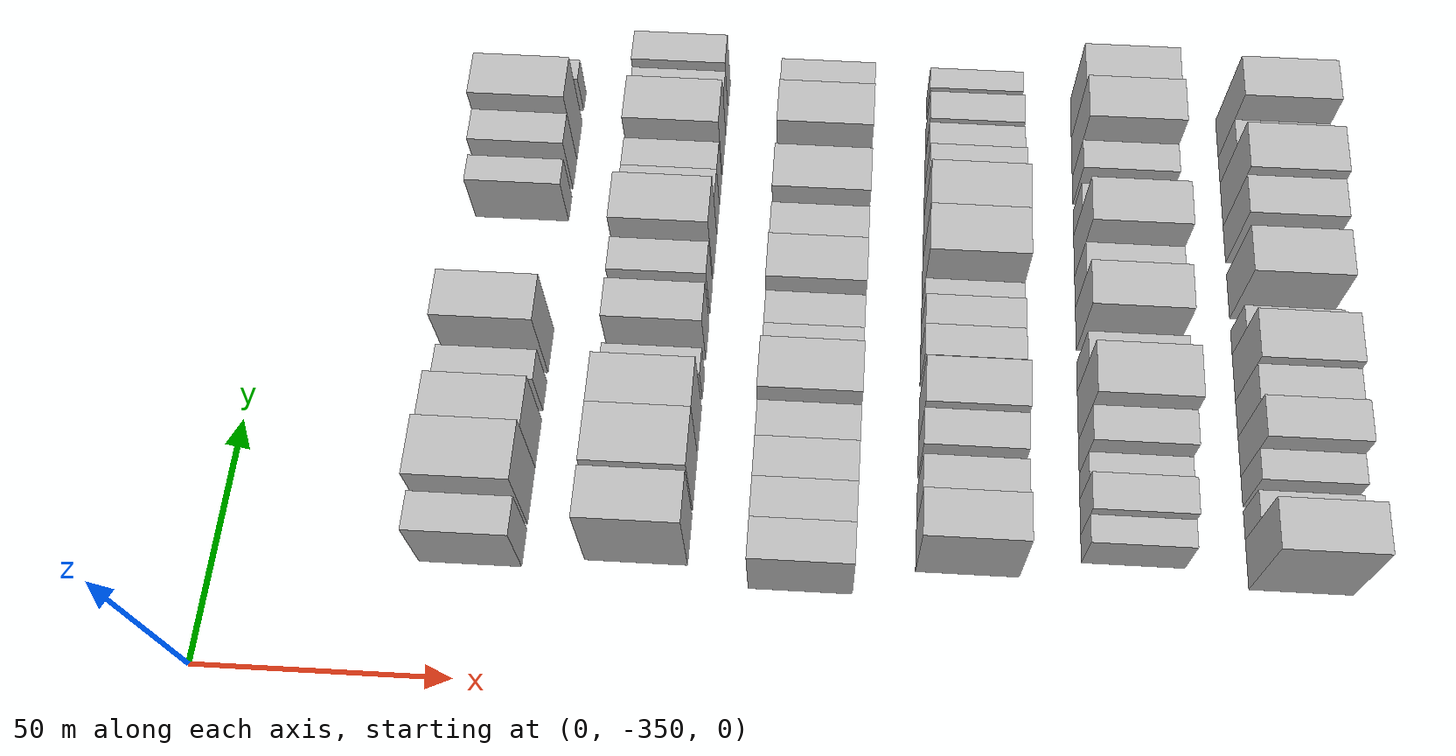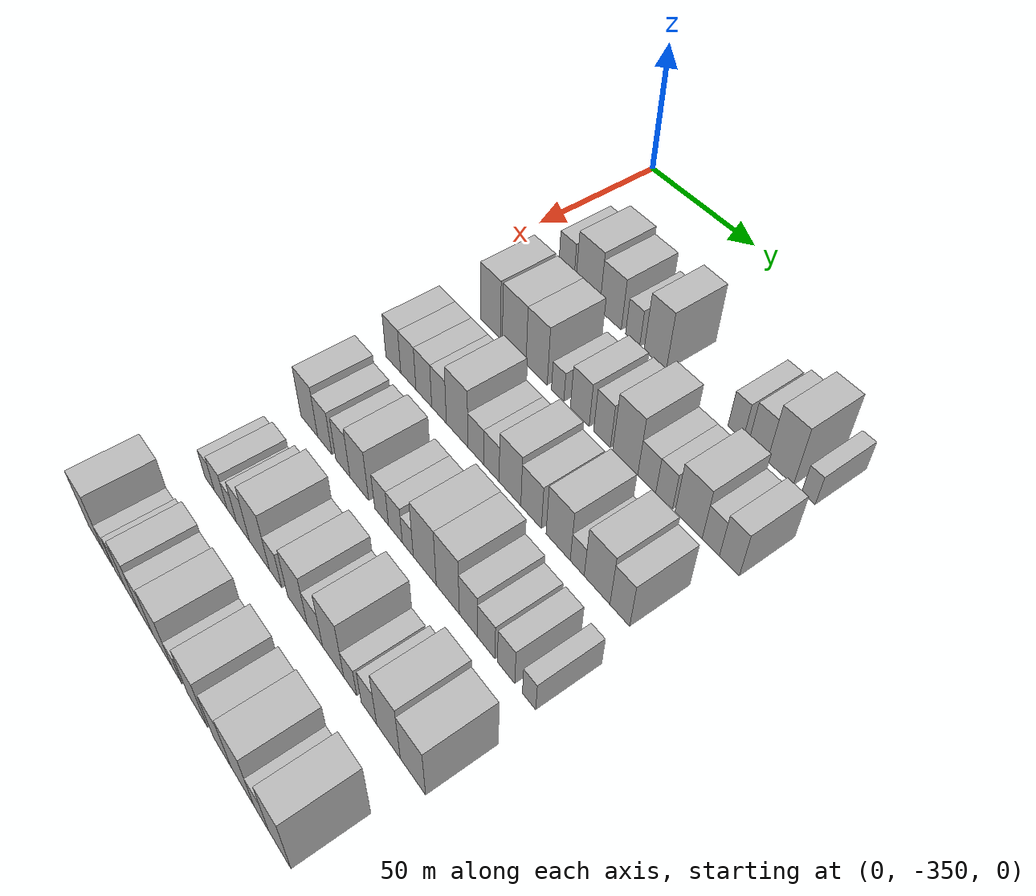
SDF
<sdf version="1.6">
 <world name="default">
  <model name="building_27">
   <static>1</static>
   <pose>50.0000 -323.6414 0 0.000000 0.000000 0.000000</pose>
   <link name="link">
    <pose>0 0 9.00 0 0 0</pose>
    <collision name="collision"><geometry><box><size>20.0000 7.6932 18.0000</size></box></geometry></collision>
    <visual name="visual">
     <cast_shadows>0</cast_shadows>
     <geometry><box><size>20.0000 7.6932 18.0000</size></box></geometry>
     <material>
      <script>
       <uri>model://HANNAS_wall/materials/scripts</uri>
       <uri>model://HANNAS_wall/materials/textures</uri>
       <name>vrc/HANNAS_wall</name>
      </script>
     </material>
    </visual>
   </link>
  </model>
  <model name="building_28">
   <static>1</static>
   <pose>50.0000 -312.8694 0 0.000000 0.000000 0.000000</pose>
   <link name="link">
    <pose>0 0 12.00 0 0 0</pose>
    <collision name="collision"><geometry><box><size>20.0000 11.8508 24.0000</size></box></geometry></collision>
    <visual name="visual">
     <cast_shadows>0</cast_shadows>
     <geometry><box><size>20.0000 11.8508 24.0000</size></box></geometry>
     <material>
      <script>
       <uri>model://HANNAS_wall/materials/scripts</uri>
       <uri>model://HANNAS_wall/materials/textures</uri>
       <name>vrc/HANNAS_wall</name>
      </script>
     </material>
    </visual>
   </link>
  </model>
  <model name="building_29">
   <static>1</static>
   <pose>50.0000 -301.7609 0 0.000000 0.000000 0.000000</pose>
   <link name="link">
    <pose>0 0 10.50 0 0 0</pose>
    <collision name="collision"><geometry><box><size>20.0000 10.3662 21.0000</size></box></geometry></collision>
    <visual name="visual">
     <cast_shadows>0</cast_shadows>
     <geometry><box><size>20.0000 10.3662 21.0000</size></box></geometry>
     <material>
      <script>
       <uri>model://HANNAS_wall/materials/scripts</uri>
       <uri>model://HANNAS_wall/materials/textures</uri>
       <name>vrc/HANNAS_wall</name>
      </script>
     </material>
    </visual>
   </link>
  </model>
  <model name="building_30">
   <static>1</static>
   <pose>50.0000 -291.3286 0 0.000000 0.000000 0.000000</pose>
   <link name="link">
    <pose>0 0 7.50 0 0 0</pose>
    <collision name="collision"><geometry><box><size>20.0000 6.4985 15.0000</size></box></geometry></collision>
    <visual name="visual">
     <cast_shadows>0</cast_shadows>
     <geometry><box><size>20.0000 6.4985 15.0000</size></box></geometry>
     <material>
      <script>
       <uri>model://HANNAS_wall/materials/scripts</uri>
       <uri>model://HANNAS_wall/materials/textures</uri>
       <name>vrc/HANNAS_wall</name>
      </script>
     </material>
    </visual>
   </link>
  </model>
  <model name="building_31">
   <static>1</static>
   <pose>50.0000 -281.1221 0 0.000000 0.000000 0.000000</pose>
   <link name="link">
    <pose>0 0 12.00 0 0 0</pose>
    <collision name="collision"><geometry><box><size>20.0000 9.9145 24.0000</size></box></geometry></collision>
    <visual name="visual">
     <cast_shadows>0</cast_shadows>
     <geometry><box><size>20.0000 9.9145 24.0000</size></box></geometry>
     <material>
      <script>
       <uri>model://HANNAS_wall/materials/scripts</uri>
       <uri>model://HANNAS_wall/materials/textures</uri>
       <name>vrc/HANNAS_wall</name>
      </script>
     </material>
    </visual>
   </link>
  </model>
  <model name="building_32">
   <static>1</static>
   <pose>50.0000 -247.1076 0 0.000000 0.000000 0.000000</pose>
   <link name="link">
    <pose>0 0 7.50 0 0 0</pose>
    <collision name="collision"><geometry><box><size>20.0000 6.0382 15.0000</size></box></geometry></collision>
    <visual name="visual">
     <cast_shadows>0</cast_shadows>
     <geometry><box><size>20.0000 6.0382 15.0000</size></box></geometry>
     <material>
      <script>
       <uri>model://HANNAS_wall/materials/scripts</uri>
       <uri>model://HANNAS_wall/materials/textures</uri>
       <name>vrc/HANNAS_wall</name>
      </script>
     </material>
    </visual>
   </link>
  </model>
  <model name="building_33">
   <static>1</static>
   <pose>50.0000 -238.3960 0 0.000000 0.000000 0.000000</pose>
   <link name="link">
    <pose>0 0 9.00 0 0 0</pose>
    <collision name="collision"><geometry><box><size>20.0000 7.3849 18.0000</size></box></geometry></collision>
    <visual name="visual">
     <cast_shadows>0</cast_shadows>
     <geometry><box><size>20.0000 7.3849 18.0000</size></box></geometry>
     <material>
      <script>
       <uri>model://HANNAS_wall/materials/scripts</uri>
       <uri>model://HANNAS_wall/materials/textures</uri>
       <name>vrc/HANNAS_wall</name>
      </script>
     </material>
    </visual>
   </link>
  </model>
  <model name="building_34">
   <static>1</static>
   <pose>50.0000 -229.7345 0 0.000000 0.000000 0.000000</pose>
   <link name="link">
    <pose>0 0 12.00 0 0 0</pose>
    <collision name="collision"><geometry><box><size>20.0000 9.9381 24.0000</size></box></geometry></collision>
    <visual name="visual">
     <cast_shadows>0</cast_shadows>
     <geometry><box><size>20.0000 9.9381 24.0000</size></box></geometry>
     <material>
      <script>
       <uri>model://HANNAS_wall/materials/scripts</uri>
       <uri>model://HANNAS_wall/materials/textures</uri>
       <name>vrc/HANNAS_wall</name>
      </script>
     </material>
    </visual>
   </link>
  </model>
  <model name="building_35">
   <static>1</static>
   <pose>50.0000 -219.2893 0 0.000000 0.000000 0.000000</pose>
   <link name="link">
    <pose>0 0 6.00 0 0 0</pose>
    <collision name="collision"><geometry><box><size>20.0000 4.9522 12.0000</size></box></geometry></collision>
    <visual name="visual">
     <cast_shadows>0</cast_shadows>
     <geometry><box><size>20.0000 4.9522 12.0000</size></box></geometry>
     <material>
      <script>
       <uri>model://HANNAS_wall/materials/scripts</uri>
       <uri>model://HANNAS_wall/materials/textures</uri>
       <name>vrc/HANNAS_wall</name>
      </script>
     </material>
    </visual>
   </link>
  </model>
  <model name="building_144">
   <static>1</static>
   <pose>82.0000 -320.3212 0 0.000000 0.000000 0.000000</pose>
   <link name="link">
    <pose>0 0 12.00 0 0 0</pose>
    <collision name="collision"><geometry><box><size>20.0000 10.1823 24.0000</size></box></geometry></collision>
    <visual name="visual">
     <cast_shadows>0</cast_shadows>
     <geometry><box><size>20.0000 10.1823 24.0000</size></box></geometry>
     <material>
      <script>
       <uri>model://HANNAS_wall/materials/scripts</uri>
       <uri>model://HANNAS_wall/materials/textures</uri>
       <name>vrc/HANNAS_wall</name>
      </script>
     </material>
    </visual>
   </link>
  </model>
  <model name="building_145">
   <static>1</static>
   <pose>82.0000 -308.3288 0 0.000000 0.000000 0.000000</pose>
   <link name="link">
    <pose>0 0 12.00 0 0 0</pose>
    <collision name="collision"><geometry><box><size>20.0000 11.8025 24.0000</size></box></geometry></collision>
    <visual name="visual">
     <cast_shadows>0</cast_shadows>
     <geometry><box><size>20.0000 11.8025 24.0000</size></box></geometry>
     <material>
      <script>
       <uri>model://HANNAS_wall/materials/scripts</uri>
       <uri>model://HANNAS_wall/materials/textures</uri>
       <name>vrc/HANNAS_wall</name>
      </script>
     </material>
    </visual>
   </link>
  </model>
  <model name="building_146">
   <static>1</static>
   <pose>82.0000 -297.3168 0 0.000000 0.000000 0.000000</pose>
   <link name="link">
    <pose>0 0 12.00 0 0 0</pose>
    <collision name="collision"><geometry><box><size>20.0000 10.2214 24.0000</size></box></geometry></collision>
    <visual name="visual">
     <cast_shadows>0</cast_shadows>
     <geometry><box><size>20.0000 10.2214 24.0000</size></box></geometry>
     <material>
      <script>
       <uri>model://HANNAS_wall/materials/scripts</uri>
       <uri>model://HANNAS_wall/materials/textures</uri>
       <name>vrc/HANNAS_wall</name>
      </script>
     </material>
    </visual>
   </link>
  </model>
  <model name="building_147">
   <static>1</static>
   <pose>82.0000 -287.3278 0 0.000000 0.000000 0.000000</pose>
   <link name="link">
    <pose>0 0 6.00 0 0 0</pose>
    <collision name="collision"><geometry><box><size>20.0000 5.7566 12.0000</size></box></geometry></collision>
    <visual name="visual">
     <cast_shadows>0</cast_shadows>
     <geometry><box><size>20.0000 5.7566 12.0000</size></box></geometry>
     <material>
      <script>
       <uri>model://HANNAS_wall/materials/scripts</uri>
       <uri>model://HANNAS_wall/materials/textures</uri>
       <name>vrc/HANNAS_wall</name>
      </script>
     </material>
    </visual>
   </link>
  </model>
  <model name="building_148">
   <static>1</static>
   <pose>82.0000 -277.2090 0 0.000000 0.000000 0.000000</pose>
   <link name="link">
    <pose>0 0 9.00 0 0 0</pose>
    <collision name="collision"><geometry><box><size>20.0000 8.4811 18.0000</size></box></geometry></collision>
    <visual name="visual">
     <cast_shadows>0</cast_shadows>
     <geometry><box><size>20.0000 8.4811 18.0000</size></box></geometry>
     <material>
      <script>
       <uri>model://HANNAS_wall/materials/scripts</uri>
       <uri>model://HANNAS_wall/materials/textures</uri>
       <name>vrc/HANNAS_wall</name>
      </script>
     </material>
    </visual>
   </link>
  </model>
  <model name="building_149">
   <static>1</static>
   <pose>82.0000 -267.3044 0 0.000000 0.000000 0.000000</pose>
   <link name="link">
    <pose>0 0 9.00 0 0 0</pose>
    <collision name="collision"><geometry><box><size>20.0000 7.3281 18.0000</size></box></geometry></collision>
    <visual name="visual">
     <cast_shadows>0</cast_shadows>
     <geometry><box><size>20.0000 7.3281 18.0000</size></box></geometry>
     <material>
      <script>
       <uri>model://HANNAS_wall/materials/scripts</uri>
       <uri>model://HANNAS_wall/materials/textures</uri>
       <name>vrc/HANNAS_wall</name>
      </script>
     </material>
    </visual>
   </link>
  </model>
  <model name="building_150">
   <static>1</static>
   <pose>82.0000 -257.3598 0 0.000000 0.000000 0.000000</pose>
   <link name="link">
    <pose>0 0 12.00 0 0 0</pose>
    <collision name="collision"><geometry><box><size>20.0000 10.5610 24.0000</size></box></geometry></collision>
    <visual name="visual">
     <cast_shadows>0</cast_shadows>
     <geometry><box><size>20.0000 10.5610 24.0000</size></box></geometry>
     <material>
      <script>
       <uri>model://HANNAS_wall/materials/scripts</uri>
       <uri>model://HANNAS_wall/materials/textures</uri>
       <name>vrc/HANNAS_wall</name>
      </script>
     </material>
    </visual>
   </link>
  </model>
  <model name="building_151">
   <static>1</static>
   <pose>82.0000 -248.3810 0 0.000000 0.000000 0.000000</pose>
   <link name="link">
    <pose>0 0 7.50 0 0 0</pose>
    <collision name="collision"><geometry><box><size>20.0000 7.3967 15.0000</size></box></geometry></collision>
    <visual name="visual">
     <cast_shadows>0</cast_shadows>
     <geometry><box><size>20.0000 7.3967 15.0000</size></box></geometry>
     <material>
      <script>
       <uri>model://HANNAS_wall/materials/scripts</uri>
       <uri>model://HANNAS_wall/materials/textures</uri>
       <name>vrc/HANNAS_wall</name>
      </script>
     </material>
    </visual>
   </link>
  </model>
  <model name="building_152">
   <static>1</static>
   <pose>82.0000 -241.3477 0 0.000000 0.000000 0.000000</pose>
   <link name="link">
    <pose>0 0 7.50 0 0 0</pose>
    <collision name="collision"><geometry><box><size>20.0000 6.6700 15.0000</size></box></geometry></collision>
    <visual name="visual">
     <cast_shadows>0</cast_shadows>
     <geometry><box><size>20.0000 6.6700 15.0000</size></box></geometry>
     <material>
      <script>
       <uri>model://HANNAS_wall/materials/scripts</uri>
       <uri>model://HANNAS_wall/materials/textures</uri>
       <name>vrc/HANNAS_wall</name>
      </script>
     </material>
    </visual>
   </link>
  </model>
  <model name="building_153">
   <static>1</static>
   <pose>82.0000 -231.7637 0 0.000000 0.000000 0.000000</pose>
   <link name="link">
    <pose>0 0 10.50 0 0 0</pose>
    <collision name="collision"><geometry><box><size>20.0000 10.4980 21.0000</size></box></geometry></collision>
    <visual name="visual">
     <cast_shadows>0</cast_shadows>
     <geometry><box><size>20.0000 10.4980 21.0000</size></box></geometry>
     <material>
      <script>
       <uri>model://HANNAS_wall/materials/scripts</uri>
       <uri>model://HANNAS_wall/materials/textures</uri>
       <name>vrc/HANNAS_wall</name>
      </script>
     </material>
    </visual>
   </link>
  </model>
  <model name="building_154">
   <static>1</static>
   <pose>82.0000 -223.2858 0 0.000000 0.000000 0.000000</pose>
   <link name="link">
    <pose>0 0 7.50 0 0 0</pose>
    <collision name="collision"><geometry><box><size>20.0000 6.4578 15.0000</size></box></geometry></collision>
    <visual name="visual">
     <cast_shadows>0</cast_shadows>
     <geometry><box><size>20.0000 6.4578 15.0000</size></box></geometry>
     <material>
      <script>
       <uri>model://HANNAS_wall/materials/scripts</uri>
       <uri>model://HANNAS_wall/materials/textures</uri>
       <name>vrc/HANNAS_wall</name>
      </script>
     </material>
    </visual>
   </link>
  </model>
  <model name="building_155">
   <static>1</static>
   <pose>82.0000 -216.4100 0 0.000000 0.000000 0.000000</pose>
   <link name="link">
    <pose>0 0 9.00 0 0 0</pose>
    <collision name="collision"><geometry><box><size>20.0000 7.2937 18.0000</size></box></geometry></collision>
    <visual name="visual">
     <cast_shadows>0</cast_shadows>
     <geometry><box><size>20.0000 7.2937 18.0000</size></box></geometry>
     <material>
      <script>
       <uri>model://HANNAS_wall/materials/scripts</uri>
       <uri>model://HANNAS_wall/materials/textures</uri>
       <name>vrc/HANNAS_wall</name>
      </script>
     </material>
    </visual>
   </link>
  </model>
  <model name="building_265">
   <static>1</static>
   <pose>114.0000 -325.2834 0 0.000000 0.000000 0.000000</pose>
   <link name="link">
    <pose>0 0 9.00 0 0 0</pose>
    <collision name="collision"><geometry><box><size>20.0000 8.1503 18.0000</size></box></geometry></collision>
    <visual name="visual">
     <cast_shadows>0</cast_shadows>
     <geometry><box><size>20.0000 8.1503 18.0000</size></box></geometry>
     <material>
      <script>
       <uri>model://HANNAS_wall/materials/scripts</uri>
       <uri>model://HANNAS_wall/materials/textures</uri>
       <name>vrc/HANNAS_wall</name>
      </script>
     </material>
    </visual>
   </link>
  </model>
  <model name="building_266">
   <static>1</static>
   <pose>114.0000 -317.1820 0 0.000000 0.000000 0.000000</pose>
   <link name="link">
    <pose>0 0 9.00 0 0 0</pose>
    <collision name="collision"><geometry><box><size>20.0000 8.0524 18.0000</size></box></geometry></collision>
    <visual name="visual">
     <cast_shadows>0</cast_shadows>
     <geometry><box><size>20.0000 8.0524 18.0000</size></box></geometry>
     <material>
      <script>
       <uri>model://HANNAS_wall/materials/scripts</uri>
       <uri>model://HANNAS_wall/materials/textures</uri>
       <name>vrc/HANNAS_wall</name>
      </script>
     </material>
    </visual>
   </link>
  </model>
  <model name="building_267">
   <static>1</static>
   <pose>114.0000 -309.0628 0 0.000000 0.000000 0.000000</pose>
   <link name="link">
    <pose>0 0 9.00 0 0 0</pose>
    <collision name="collision"><geometry><box><size>20.0000 8.1862 18.0000</size></box></geometry></collision>
    <visual name="visual">
     <cast_shadows>0</cast_shadows>
     <geometry><box><size>20.0000 8.1862 18.0000</size></box></geometry>
     <material>
      <script>
       <uri>model://HANNAS_wall/materials/scripts</uri>
       <uri>model://HANNAS_wall/materials/textures</uri>
       <name>vrc/HANNAS_wall</name>
      </script>
     </material>
    </visual>
   </link>
  </model>
  <model name="building_268">
   <static>1</static>
   <pose>114.0000 -301.2890 0 0.000000 0.000000 0.000000</pose>
   <link name="link">
    <pose>0 0 9.00 0 0 0</pose>
    <collision name="collision"><geometry><box><size>20.0000 7.3613 18.0000</size></box></geometry></collision>
    <visual name="visual">
     <cast_shadows>0</cast_shadows>
     <geometry><box><size>20.0000 7.3613 18.0000</size></box></geometry>
     <material>
      <script>
       <uri>model://HANNAS_wall/materials/scripts</uri>
       <uri>model://HANNAS_wall/materials/textures</uri>
       <name>vrc/HANNAS_wall</name>
      </script>
     </material>
    </visual>
   </link>
  </model>
  <model name="building_269">
   <static>1</static>
   <pose>114.0000 -292.2931 0 0.000000 0.000000 0.000000</pose>
   <link name="link">
    <pose>0 0 12.00 0 0 0</pose>
    <collision name="collision"><geometry><box><size>20.0000 10.6304 24.0000</size></box></geometry></collision>
    <visual name="visual">
     <cast_shadows>0</cast_shadows>
     <geometry><box><size>20.0000 10.6304 24.0000</size></box></geometry>
     <material>
      <script>
       <uri>model://HANNAS_wall/materials/scripts</uri>
       <uri>model://HANNAS_wall/materials/textures</uri>
       <name>vrc/HANNAS_wall</name>
      </script>
     </material>
    </visual>
   </link>
  </model>
  <model name="building_270">
   <static>1</static>
   <pose>114.0000 -283.2982 0 0.000000 0.000000 0.000000</pose>
   <link name="link">
    <pose>0 0 7.50 0 0 0</pose>
    <collision name="collision"><geometry><box><size>20.0000 7.3595 15.0000</size></box></geometry></collision>
    <visual name="visual">
     <cast_shadows>0</cast_shadows>
     <geometry><box><size>20.0000 7.3595 15.0000</size></box></geometry>
     <material>
      <script>
       <uri>model://HANNAS_wall/materials/scripts</uri>
       <uri>model://HANNAS_wall/materials/textures</uri>
       <name>vrc/HANNAS_wall</name>
      </script>
     </material>
    </visual>
   </link>
  </model>
  <model name="building_271">
   <static>1</static>
   <pose>114.0000 -276.0017 0 0.000000 0.000000 0.000000</pose>
   <link name="link">
    <pose>0 0 7.50 0 0 0</pose>
    <collision name="collision"><geometry><box><size>20.0000 7.2335 15.0000</size></box></geometry></collision>
    <visual name="visual">
     <cast_shadows>0</cast_shadows>
     <geometry><box><size>20.0000 7.2335 15.0000</size></box></geometry>
     <material>
      <script>
       <uri>model://HANNAS_wall/materials/scripts</uri>
       <uri>model://HANNAS_wall/materials/textures</uri>
       <name>vrc/HANNAS_wall</name>
      </script>
     </material>
    </visual>
   </link>
  </model>
  <model name="building_272">
   <static>1</static>
   <pose>114.0000 -267.5055 0 0.000000 0.000000 0.000000</pose>
   <link name="link">
    <pose>0 0 10.50 0 0 0</pose>
    <collision name="collision"><geometry><box><size>20.0000 9.7589 21.0000</size></box></geometry></collision>
    <visual name="visual">
     <cast_shadows>0</cast_shadows>
     <geometry><box><size>20.0000 9.7589 21.0000</size></box></geometry>
     <material>
      <script>
       <uri>model://HANNAS_wall/materials/scripts</uri>
       <uri>model://HANNAS_wall/materials/textures</uri>
       <name>vrc/HANNAS_wall</name>
      </script>
     </material>
    </visual>
   </link>
  </model>
  <model name="building_273">
   <static>1</static>
   <pose>114.0000 -258.1486 0 0.000000 0.000000 0.000000</pose>
   <link name="link">
    <pose>0 0 9.00 0 0 0</pose>
    <collision name="collision"><geometry><box><size>20.0000 8.9550 18.0000</size></box></geometry></collision>
    <visual name="visual">
     <cast_shadows>0</cast_shadows>
     <geometry><box><size>20.0000 8.9550 18.0000</size></box></geometry>
     <material>
      <script>
       <uri>model://HANNAS_wall/materials/scripts</uri>
       <uri>model://HANNAS_wall/materials/textures</uri>
       <name>vrc/HANNAS_wall</name>
      </script>
     </material>
    </visual>
   </link>
  </model>
  <model name="building_274">
   <static>1</static>
   <pose>114.0000 -246.6217 0 0.000000 0.000000 0.000000</pose>
   <link name="link">
    <pose>0 0 10.50 0 0 0</pose>
    <collision name="collision"><geometry><box><size>20.0000 10.0988 21.0000</size></box></geometry></collision>
    <visual name="visual">
     <cast_shadows>0</cast_shadows>
     <geometry><box><size>20.0000 10.0988 21.0000</size></box></geometry>
     <material>
      <script>
       <uri>model://HANNAS_wall/materials/scripts</uri>
       <uri>model://HANNAS_wall/materials/textures</uri>
       <name>vrc/HANNAS_wall</name>
      </script>
     </material>
    </visual>
   </link>
  </model>
  <model name="building_275">
   <static>1</static>
   <pose>114.0000 -238.7456 0 0.000000 0.000000 0.000000</pose>
   <link name="link">
    <pose>0 0 6.00 0 0 0</pose>
    <collision name="collision"><geometry><box><size>20.0000 5.6533 12.0000</size></box></geometry></collision>
    <visual name="visual">
     <cast_shadows>0</cast_shadows>
     <geometry><box><size>20.0000 5.6533 12.0000</size></box></geometry>
     <material>
      <script>
       <uri>model://HANNAS_wall/materials/scripts</uri>
       <uri>model://HANNAS_wall/materials/textures</uri>
       <name>vrc/HANNAS_wall</name>
      </script>
     </material>
    </visual>
   </link>
  </model>
  <model name="building_276">
   <static>1</static>
   <pose>114.0000 -230.8264 0 0.000000 0.000000 0.000000</pose>
   <link name="link">
    <pose>0 0 10.50 0 0 0</pose>
    <collision name="collision"><geometry><box><size>20.0000 10.1851 21.0000</size></box></geometry></collision>
    <visual name="visual">
     <cast_shadows>0</cast_shadows>
     <geometry><box><size>20.0000 10.1851 21.0000</size></box></geometry>
     <material>
      <script>
       <uri>model://HANNAS_wall/materials/scripts</uri>
       <uri>model://HANNAS_wall/materials/textures</uri>
       <name>vrc/HANNAS_wall</name>
      </script>
     </material>
    </visual>
   </link>
  </model>
  <model name="building_277">
   <static>1</static>
   <pose>114.0000 -221.9680 0 0.000000 0.000000 0.000000</pose>
   <link name="link">
    <pose>0 0 9.00 0 0 0</pose>
    <collision name="collision"><geometry><box><size>20.0000 7.5317 18.0000</size></box></geometry></collision>
    <visual name="visual">
     <cast_shadows>0</cast_shadows>
     <geometry><box><size>20.0000 7.5317 18.0000</size></box></geometry>
     <material>
      <script>
       <uri>model://HANNAS_wall/materials/scripts</uri>
       <uri>model://HANNAS_wall/materials/textures</uri>
       <name>vrc/HANNAS_wall</name>
      </script>
     </material>
    </visual>
   </link>
  </model>
  <model name="building_386">
   <static>1</static>
   <pose>146.0000 -319.5078 0 0.000000 0.000000 0.000000</pose>
   <link name="link">
    <pose>0 0 10.50 0 0 0</pose>
    <collision name="collision"><geometry><box><size>20.0000 9.3915 21.0000</size></box></geometry></collision>
    <visual name="visual">
     <cast_shadows>0</cast_shadows>
     <geometry><box><size>20.0000 9.3915 21.0000</size></box></geometry>
     <material>
      <script>
       <uri>model://HANNAS_wall/materials/scripts</uri>
       <uri>model://HANNAS_wall/materials/textures</uri>
       <name>vrc/HANNAS_wall</name>
      </script>
     </material>
    </visual>
   </link>
  </model>
  <model name="building_387">
   <static>1</static>
   <pose>146.0000 -310.8826 0 0.000000 0.000000 0.000000</pose>
   <link name="link">
    <pose>0 0 9.00 0 0 0</pose>
    <collision name="collision"><geometry><box><size>20.0000 7.8588 18.0000</size></box></geometry></collision>
    <visual name="visual">
     <cast_shadows>0</cast_shadows>
     <geometry><box><size>20.0000 7.8588 18.0000</size></box></geometry>
     <material>
      <script>
       <uri>model://HANNAS_wall/materials/scripts</uri>
       <uri>model://HANNAS_wall/materials/textures</uri>
       <name>vrc/HANNAS_wall</name>
      </script>
     </material>
    </visual>
   </link>
  </model>
  <model name="building_388">
   <static>1</static>
   <pose>146.0000 -301.2039 0 0.000000 0.000000 0.000000</pose>
   <link name="link">
    <pose>0 0 9.00 0 0 0</pose>
    <collision name="collision"><geometry><box><size>20.0000 7.4986 18.0000</size></box></geometry></collision>
    <visual name="visual">
     <cast_shadows>0</cast_shadows>
     <geometry><box><size>20.0000 7.4986 18.0000</size></box></geometry>
     <material>
      <script>
       <uri>model://HANNAS_wall/materials/scripts</uri>
       <uri>model://HANNAS_wall/materials/textures</uri>
       <name>vrc/HANNAS_wall</name>
      </script>
     </material>
    </visual>
   </link>
  </model>
  <model name="building_389">
   <static>1</static>
   <pose>146.0000 -292.6396 0 0.000000 0.000000 0.000000</pose>
   <link name="link">
    <pose>0 0 10.50 0 0 0</pose>
    <collision name="collision"><geometry><box><size>20.0000 9.6301 21.0000</size></box></geometry></collision>
    <visual name="visual">
     <cast_shadows>0</cast_shadows>
     <geometry><box><size>20.0000 9.6301 21.0000</size></box></geometry>
     <material>
      <script>
       <uri>model://HANNAS_wall/materials/scripts</uri>
       <uri>model://HANNAS_wall/materials/textures</uri>
       <name>vrc/HANNAS_wall</name>
      </script>
     </material>
    </visual>
   </link>
  </model>
  <model name="building_390">
   <static>1</static>
   <pose>146.0000 -281.4027 0 0.000000 0.000000 0.000000</pose>
   <link name="link">
    <pose>0 0 7.50 0 0 0</pose>
    <collision name="collision"><geometry><box><size>20.0000 6.8437 15.0000</size></box></geometry></collision>
    <visual name="visual">
     <cast_shadows>0</cast_shadows>
     <geometry><box><size>20.0000 6.8437 15.0000</size></box></geometry>
     <material>
      <script>
       <uri>model://HANNAS_wall/materials/scripts</uri>
       <uri>model://HANNAS_wall/materials/textures</uri>
       <name>vrc/HANNAS_wall</name>
      </script>
     </material>
    </visual>
   </link>
  </model>
  <model name="building_391">
   <static>1</static>
   <pose>146.0000 -274.6642 0 0.000000 0.000000 0.000000</pose>
   <link name="link">
    <pose>0 0 7.50 0 0 0</pose>
    <collision name="collision"><geometry><box><size>20.0000 6.6334 15.0000</size></box></geometry></collision>
    <visual name="visual">
     <cast_shadows>0</cast_shadows>
     <geometry><box><size>20.0000 6.6334 15.0000</size></box></geometry>
     <material>
      <script>
       <uri>model://HANNAS_wall/materials/scripts</uri>
       <uri>model://HANNAS_wall/materials/textures</uri>
       <name>vrc/HANNAS_wall</name>
      </script>
     </material>
    </visual>
   </link>
  </model>
  <model name="building_392">
   <static>1</static>
   <pose>146.0000 -268.7744 0 0.000000 0.000000 0.000000</pose>
   <link name="link">
    <pose>0 0 6.00 0 0 0</pose>
    <collision name="collision"><geometry><box><size>20.0000 5.1462 12.0000</size></box></geometry></collision>
    <visual name="visual">
     <cast_shadows>0</cast_shadows>
     <geometry><box><size>20.0000 5.1462 12.0000</size></box></geometry>
     <material>
      <script>
       <uri>model://HANNAS_wall/materials/scripts</uri>
       <uri>model://HANNAS_wall/materials/textures</uri>
       <name>vrc/HANNAS_wall</name>
      </script>
     </material>
    </visual>
   </link>
  </model>
  <model name="building_393">
   <static>1</static>
   <pose>146.0000 -260.9566 0 0.000000 0.000000 0.000000</pose>
   <link name="link">
    <pose>0 0 12.00 0 0 0</pose>
    <collision name="collision"><geometry><box><size>20.0000 10.4893 24.0000</size></box></geometry></collision>
    <visual name="visual">
     <cast_shadows>0</cast_shadows>
     <geometry><box><size>20.0000 10.4893 24.0000</size></box></geometry>
     <material>
      <script>
       <uri>model://HANNAS_wall/materials/scripts</uri>
       <uri>model://HANNAS_wall/materials/textures</uri>
       <name>vrc/HANNAS_wall</name>
      </script>
     </material>
    </visual>
   </link>
  </model>
  <model name="building_394">
   <static>1</static>
   <pose>146.0000 -250.6134 0 0.000000 0.000000 0.000000</pose>
   <link name="link">
    <pose>0 0 12.00 0 0 0</pose>
    <collision name="collision"><geometry><box><size>20.0000 10.1972 24.0000</size></box></geometry></collision>
    <visual name="visual">
     <cast_shadows>0</cast_shadows>
     <geometry><box><size>20.0000 10.1972 24.0000</size></box></geometry>
     <material>
      <script>
       <uri>model://HANNAS_wall/materials/scripts</uri>
       <uri>model://HANNAS_wall/materials/textures</uri>
       <name>vrc/HANNAS_wall</name>
      </script>
     </material>
    </visual>
   </link>
  </model>
  <model name="building_395">
   <static>1</static>
   <pose>146.0000 -241.6438 0 0.000000 0.000000 0.000000</pose>
   <link name="link">
    <pose>0 0 9.00 0 0 0</pose>
    <collision name="collision"><geometry><box><size>20.0000 7.7420 18.0000</size></box></geometry></collision>
    <visual name="visual">
     <cast_shadows>0</cast_shadows>
     <geometry><box><size>20.0000 7.7420 18.0000</size></box></geometry>
     <material>
      <script>
       <uri>model://HANNAS_wall/materials/scripts</uri>
       <uri>model://HANNAS_wall/materials/textures</uri>
       <name>vrc/HANNAS_wall</name>
      </script>
     </material>
    </visual>
   </link>
  </model>
  <model name="building_396">
   <static>1</static>
   <pose>146.0000 -234.1545 0 0.000000 0.000000 0.000000</pose>
   <link name="link">
    <pose>0 0 7.50 0 0 0</pose>
    <collision name="collision"><geometry><box><size>20.0000 7.2367 15.0000</size></box></geometry></collision>
    <visual name="visual">
     <cast_shadows>0</cast_shadows>
     <geometry><box><size>20.0000 7.2367 15.0000</size></box></geometry>
     <material>
      <script>
       <uri>model://HANNAS_wall/materials/scripts</uri>
       <uri>model://HANNAS_wall/materials/textures</uri>
       <name>vrc/HANNAS_wall</name>
      </script>
     </material>
    </visual>
   </link>
  </model>
  <model name="building_397">
   <static>1</static>
   <pose>146.0000 -226.0897 0 0.000000 0.000000 0.000000</pose>
   <link name="link">
    <pose>0 0 7.50 0 0 0</pose>
    <collision name="collision"><geometry><box><size>20.0000 6.8929 15.0000</size></box></geometry></collision>
    <visual name="visual">
     <cast_shadows>0</cast_shadows>
     <geometry><box><size>20.0000 6.8929 15.0000</size></box></geometry>
     <material>
      <script>
       <uri>model://HANNAS_wall/materials/scripts</uri>
       <uri>model://HANNAS_wall/materials/textures</uri>
       <name>vrc/HANNAS_wall</name>
      </script>
     </material>
    </visual>
   </link>
  </model>
  <model name="building_398">
   <static>1</static>
   <pose>146.0000 -217.0744 0 0.000000 0.000000 0.000000</pose>
   <link name="link">
    <pose>0 0 6.00 0 0 0</pose>
    <collision name="collision"><geometry><box><size>20.0000 5.1376 12.0000</size></box></geometry></collision>
    <visual name="visual">
     <cast_shadows>0</cast_shadows>
     <geometry><box><size>20.0000 5.1376 12.0000</size></box></geometry>
     <material>
      <script>
       <uri>model://HANNAS_wall/materials/scripts</uri>
       <uri>model://HANNAS_wall/materials/textures</uri>
       <name>vrc/HANNAS_wall</name>
      </script>
     </material>
    </visual>
   </link>
  </model>
  <model name="building_505">
   <static>1</static>
   <pose>178.0000 -317.8213 0 0.000000 0.000000 0.000000</pose>
   <link name="link">
    <pose>0 0 6.00 0 0 0</pose>
    <collision name="collision"><geometry><box><size>20.0000 5.6110 12.0000</size></box></geometry></collision>
    <visual name="visual">
     <cast_shadows>0</cast_shadows>
     <geometry><box><size>20.0000 5.6110 12.0000</size></box></geometry>
     <material>
      <script>
       <uri>model://HANNAS_wall/materials/scripts</uri>
       <uri>model://HANNAS_wall/materials/textures</uri>
       <name>vrc/HANNAS_wall</name>
      </script>
     </material>
    </visual>
   </link>
  </model>
  <model name="building_506">
   <static>1</static>
   <pose>178.0000 -311.3039 0 0.000000 0.000000 0.000000</pose>
   <link name="link">
    <pose>0 0 7.50 0 0 0</pose>
    <collision name="collision"><geometry><box><size>20.0000 7.4238 15.0000</size></box></geometry></collision>
    <visual name="visual">
     <cast_shadows>0</cast_shadows>
     <geometry><box><size>20.0000 7.4238 15.0000</size></box></geometry>
     <material>
      <script>
       <uri>model://HANNAS_wall/materials/scripts</uri>
       <uri>model://HANNAS_wall/materials/textures</uri>
       <name>vrc/HANNAS_wall</name>
      </script>
     </material>
    </visual>
   </link>
  </model>
  <model name="building_507">
   <static>1</static>
   <pose>178.0000 -304.9436 0 0.000000 0.000000 0.000000</pose>
   <link name="link">
    <pose>0 0 6.00 0 0 0</pose>
    <collision name="collision"><geometry><box><size>20.0000 5.2969 12.0000</size></box></geometry></collision>
    <visual name="visual">
     <cast_shadows>0</cast_shadows>
     <geometry><box><size>20.0000 5.2969 12.0000</size></box></geometry>
     <material>
      <script>
       <uri>model://HANNAS_wall/materials/scripts</uri>
       <uri>model://HANNAS_wall/materials/textures</uri>
       <name>vrc/HANNAS_wall</name>
      </script>
     </material>
    </visual>
   </link>
  </model>
  <model name="building_508">
   <static>1</static>
   <pose>178.0000 -298.6884 0 0.000000 0.000000 0.000000</pose>
   <link name="link">
    <pose>0 0 9.00 0 0 0</pose>
    <collision name="collision"><geometry><box><size>20.0000 7.2136 18.0000</size></box></geometry></collision>
    <visual name="visual">
     <cast_shadows>0</cast_shadows>
     <geometry><box><size>20.0000 7.2136 18.0000</size></box></geometry>
     <material>
      <script>
       <uri>model://HANNAS_wall/materials/scripts</uri>
       <uri>model://HANNAS_wall/materials/textures</uri>
       <name>vrc/HANNAS_wall</name>
      </script>
     </material>
    </visual>
   </link>
  </model>
  <model name="building_509">
   <static>1</static>
   <pose>178.0000 -289.7011 0 0.000000 0.000000 0.000000</pose>
   <link name="link">
    <pose>0 0 12.00 0 0 0</pose>
    <collision name="collision"><geometry><box><size>20.0000 10.7609 24.0000</size></box></geometry></collision>
    <visual name="visual">
     <cast_shadows>0</cast_shadows>
     <geometry><box><size>20.0000 10.7609 24.0000</size></box></geometry>
     <material>
      <script>
       <uri>model://HANNAS_wall/materials/scripts</uri>
       <uri>model://HANNAS_wall/materials/textures</uri>
       <name>vrc/HANNAS_wall</name>
      </script>
     </material>
    </visual>
   </link>
  </model>
  <model name="building_510">
   <static>1</static>
   <pose>178.0000 -281.1006 0 0.000000 0.000000 0.000000</pose>
   <link name="link">
    <pose>0 0 7.50 0 0 0</pose>
    <collision name="collision"><geometry><box><size>20.0000 6.4400 15.0000</size></box></geometry></collision>
    <visual name="visual">
     <cast_shadows>0</cast_shadows>
     <geometry><box><size>20.0000 6.4400 15.0000</size></box></geometry>
     <material>
      <script>
       <uri>model://HANNAS_wall/materials/scripts</uri>
       <uri>model://HANNAS_wall/materials/textures</uri>
       <name>vrc/HANNAS_wall</name>
      </script>
     </material>
    </visual>
   </link>
  </model>
  <model name="building_511">
   <static>1</static>
   <pose>178.0000 -270.0120 0 0.000000 0.000000 0.000000</pose>
   <link name="link">
    <pose>0 0 10.50 0 0 0</pose>
    <collision name="collision"><geometry><box><size>20.0000 9.7374 21.0000</size></box></geometry></collision>
    <visual name="visual">
     <cast_shadows>0</cast_shadows>
     <geometry><box><size>20.0000 9.7374 21.0000</size></box></geometry>
     <material>
      <script>
       <uri>model://HANNAS_wall/materials/scripts</uri>
       <uri>model://HANNAS_wall/materials/textures</uri>
       <name>vrc/HANNAS_wall</name>
      </script>
     </material>
    </visual>
   </link>
  </model>
  <model name="building_512">
   <static>1</static>
   <pose>178.0000 -261.4298 0 0.000000 0.000000 0.000000</pose>
   <link name="link">
    <pose>0 0 7.50 0 0 0</pose>
    <collision name="collision"><geometry><box><size>20.0000 7.4269 15.0000</size></box></geometry></collision>
    <visual name="visual">
     <cast_shadows>0</cast_shadows>
     <geometry><box><size>20.0000 7.4269 15.0000</size></box></geometry>
     <material>
      <script>
       <uri>model://HANNAS_wall/materials/scripts</uri>
       <uri>model://HANNAS_wall/materials/textures</uri>
       <name>vrc/HANNAS_wall</name>
      </script>
     </material>
    </visual>
   </link>
  </model>
  <model name="building_513">
   <static>1</static>
   <pose>178.0000 -252.7635 0 0.000000 0.000000 0.000000</pose>
   <link name="link">
    <pose>0 0 12.00 0 0 0</pose>
    <collision name="collision"><geometry><box><size>20.0000 9.9057 24.0000</size></box></geometry></collision>
    <visual name="visual">
     <cast_shadows>0</cast_shadows>
     <geometry><box><size>20.0000 9.9057 24.0000</size></box></geometry>
     <material>
      <script>
       <uri>model://HANNAS_wall/materials/scripts</uri>
       <uri>model://HANNAS_wall/materials/textures</uri>
       <name>vrc/HANNAS_wall</name>
      </script>
     </material>
    </visual>
   </link>
  </model>
  <model name="building_514">
   <static>1</static>
   <pose>178.0000 -244.8732 0 0.000000 0.000000 0.000000</pose>
   <link name="link">
    <pose>0 0 6.00 0 0 0</pose>
    <collision name="collision"><geometry><box><size>20.0000 5.8748 12.0000</size></box></geometry></collision>
    <visual name="visual">
     <cast_shadows>0</cast_shadows>
     <geometry><box><size>20.0000 5.8748 12.0000</size></box></geometry>
     <material>
      <script>
       <uri>model://HANNAS_wall/materials/scripts</uri>
       <uri>model://HANNAS_wall/materials/textures</uri>
       <name>vrc/HANNAS_wall</name>
      </script>
     </material>
    </visual>
   </link>
  </model>
  <model name="building_515">
   <static>1</static>
   <pose>178.0000 -236.5650 0 0.000000 0.000000 0.000000</pose>
   <link name="link">
    <pose>0 0 7.50 0 0 0</pose>
    <collision name="collision"><geometry><box><size>20.0000 6.7418 15.0000</size></box></geometry></collision>
    <visual name="visual">
     <cast_shadows>0</cast_shadows>
     <geometry><box><size>20.0000 6.7418 15.0000</size></box></geometry>
     <material>
      <script>
       <uri>model://HANNAS_wall/materials/scripts</uri>
       <uri>model://HANNAS_wall/materials/textures</uri>
       <name>vrc/HANNAS_wall</name>
      </script>
     </material>
    </visual>
   </link>
  </model>
  <model name="building_516">
   <static>1</static>
   <pose>178.0000 -228.1769 0 0.000000 0.000000 0.000000</pose>
   <link name="link">
    <pose>0 0 12.00 0 0 0</pose>
    <collision name="collision"><geometry><box><size>20.0000 10.0343 24.0000</size></box></geometry></collision>
    <visual name="visual">
     <cast_shadows>0</cast_shadows>
     <geometry><box><size>20.0000 10.0343 24.0000</size></box></geometry>
     <material>
      <script>
       <uri>model://HANNAS_wall/materials/scripts</uri>
       <uri>model://HANNAS_wall/materials/textures</uri>
       <name>vrc/HANNAS_wall</name>
      </script>
     </material>
    </visual>
   </link>
  </model>
  <model name="building_517">
   <static>1</static>
   <pose>178.0000 -218.0359 0 0.000000 0.000000 0.000000</pose>
   <link name="link">
    <pose>0 0 10.50 0 0 0</pose>
    <collision name="collision"><geometry><box><size>20.0000 10.2478 21.0000</size></box></geometry></collision>
    <visual name="visual">
     <cast_shadows>0</cast_shadows>
     <geometry><box><size>20.0000 10.2478 21.0000</size></box></geometry>
     <material>
      <script>
       <uri>model://HANNAS_wall/materials/scripts</uri>
       <uri>model://HANNAS_wall/materials/textures</uri>
       <name>vrc/HANNAS_wall</name>
      </script>
     </material>
    </visual>
   </link>
  </model>
  <model name="building_626">
   <static>1</static>
   <pose>210.0000 -319.2152 0 0.000000 0.000000 0.000000</pose>
   <link name="link">
    <pose>0 0 12.00 0 0 0</pose>
    <collision name="collision"><geometry><box><size>20.0000 10.0149 24.0000</size></box></geometry></collision>
    <visual name="visual">
     <cast_shadows>0</cast_shadows>
     <geometry><box><size>20.0000 10.0149 24.0000</size></box></geometry>
     <material>
      <script>
       <uri>model://HANNAS_wall/materials/scripts</uri>
       <uri>model://HANNAS_wall/materials/textures</uri>
       <name>vrc/HANNAS_wall</name>
      </script>
     </material>
    </visual>
   </link>
  </model>
  <model name="building_627">
   <static>1</static>
   <pose>210.0000 -311.2717 0 0.000000 0.000000 0.000000</pose>
   <link name="link">
    <pose>0 0 6.00 0 0 0</pose>
    <collision name="collision"><geometry><box><size>20.0000 5.8721 12.0000</size></box></geometry></collision>
    <visual name="visual">
     <cast_shadows>0</cast_shadows>
     <geometry><box><size>20.0000 5.8721 12.0000</size></box></geometry>
     <material>
      <script>
       <uri>model://HANNAS_wall/materials/scripts</uri>
       <uri>model://HANNAS_wall/materials/textures</uri>
       <name>vrc/HANNAS_wall</name>
      </script>
     </material>
    </visual>
   </link>
  </model>
  <model name="building_628">
   <static>1</static>
   <pose>210.0000 -304.1911 0 0.000000 0.000000 0.000000</pose>
   <link name="link">
    <pose>0 0 7.50 0 0 0</pose>
    <collision name="collision"><geometry><box><size>20.0000 6.2891 15.0000</size></box></geometry></collision>
    <visual name="visual">
     <cast_shadows>0</cast_shadows>
     <geometry><box><size>20.0000 6.2891 15.0000</size></box></geometry>
     <material>
      <script>
       <uri>model://HANNAS_wall/materials/scripts</uri>
       <uri>model://HANNAS_wall/materials/textures</uri>
       <name>vrc/HANNAS_wall</name>
      </script>
     </material>
    </visual>
   </link>
  </model>
  <model name="building_629">
   <static>1</static>
   <pose>210.0000 -296.8049 0 0.000000 0.000000 0.000000</pose>
   <link name="link">
    <pose>0 0 10.50 0 0 0</pose>
    <collision name="collision"><geometry><box><size>20.0000 8.4832 21.0000</size></box></geometry></collision>
    <visual name="visual">
     <cast_shadows>0</cast_shadows>
     <geometry><box><size>20.0000 8.4832 21.0000</size></box></geometry>
     <material>
      <script>
       <uri>model://HANNAS_wall/materials/scripts</uri>
       <uri>model://HANNAS_wall/materials/textures</uri>
       <name>vrc/HANNAS_wall</name>
      </script>
     </material>
    </visual>
   </link>
  </model>
  <model name="building_630">
   <static>1</static>
   <pose>210.0000 -288.5774 0 0.000000 0.000000 0.000000</pose>
   <link name="link">
    <pose>0 0 9.00 0 0 0</pose>
    <collision name="collision"><geometry><box><size>20.0000 7.9718 18.0000</size></box></geometry></collision>
    <visual name="visual">
     <cast_shadows>0</cast_shadows>
     <geometry><box><size>20.0000 7.9718 18.0000</size></box></geometry>
     <material>
      <script>
       <uri>model://HANNAS_wall/materials/scripts</uri>
       <uri>model://HANNAS_wall/materials/textures</uri>
       <name>vrc/HANNAS_wall</name>
      </script>
     </material>
    </visual>
   </link>
  </model>
  <model name="building_631">
   <static>1</static>
   <pose>210.0000 -279.3457 0 0.000000 0.000000 0.000000</pose>
   <link name="link">
    <pose>0 0 10.50 0 0 0</pose>
    <collision name="collision"><geometry><box><size>20.0000 10.4918 21.0000</size></box></geometry></collision>
    <visual name="visual">
     <cast_shadows>0</cast_shadows>
     <geometry><box><size>20.0000 10.4918 21.0000</size></box></geometry>
     <material>
      <script>
       <uri>model://HANNAS_wall/materials/scripts</uri>
       <uri>model://HANNAS_wall/materials/textures</uri>
       <name>vrc/HANNAS_wall</name>
      </script>
     </material>
    </visual>
   </link>
  </model>
  <model name="building_632">
   <static>1</static>
   <pose>210.0000 -271.4329 0 0.000000 0.000000 0.000000</pose>
   <link name="link">
    <pose>0 0 6.00 0 0 0</pose>
    <collision name="collision"><geometry><box><size>20.0000 5.3337 12.0000</size></box></geometry></collision>
    <visual name="visual">
     <cast_shadows>0</cast_shadows>
     <geometry><box><size>20.0000 5.3337 12.0000</size></box></geometry>
     <material>
      <script>
       <uri>model://HANNAS_wall/materials/scripts</uri>
       <uri>model://HANNAS_wall/materials/textures</uri>
       <name>vrc/HANNAS_wall</name>
      </script>
     </material>
    </visual>
   </link>
  </model>
  <model name="building_633">
   <static>1</static>
   <pose>210.0000 -260.6265 0 0.000000 0.000000 0.000000</pose>
   <link name="link">
    <pose>0 0 10.50 0 0 0</pose>
    <collision name="collision"><geometry><box><size>20.0000 10.2791 21.0000</size></box></geometry></collision>
    <visual name="visual">
     <cast_shadows>0</cast_shadows>
     <geometry><box><size>20.0000 10.2791 21.0000</size></box></geometry>
     <material>
      <script>
       <uri>model://HANNAS_wall/materials/scripts</uri>
       <uri>model://HANNAS_wall/materials/textures</uri>
       <name>vrc/HANNAS_wall</name>
      </script>
     </material>
    </visual>
   </link>
  </model>
  <model name="building_634">
   <static>1</static>
   <pose>210.0000 -248.0807 0 0.000000 0.000000 0.000000</pose>
   <link name="link">
    <pose>0 0 10.50 0 0 0</pose>
    <collision name="collision"><geometry><box><size>20.0000 8.8126 21.0000</size></box></geometry></collision>
    <visual name="visual">
     <cast_shadows>0</cast_shadows>
     <geometry><box><size>20.0000 8.8126 21.0000</size></box></geometry>
     <material>
      <script>
       <uri>model://HANNAS_wall/materials/scripts</uri>
       <uri>model://HANNAS_wall/materials/textures</uri>
       <name>vrc/HANNAS_wall</name>
      </script>
     </material>
    </visual>
   </link>
  </model>
  <model name="building_635">
   <static>1</static>
   <pose>210.0000 -238.3116 0 0.000000 0.000000 0.000000</pose>
   <link name="link">
    <pose>0 0 12.00 0 0 0</pose>
    <collision name="collision"><geometry><box><size>20.0000 10.7257 24.0000</size></box></geometry></collision>
    <visual name="visual">
     <cast_shadows>0</cast_shadows>
     <geometry><box><size>20.0000 10.7257 24.0000</size></box></geometry>
     <material>
      <script>
       <uri>model://HANNAS_wall/materials/scripts</uri>
       <uri>model://HANNAS_wall/materials/textures</uri>
       <name>vrc/HANNAS_wall</name>
      </script>
     </material>
    </visual>
   </link>
  </model>
  <model name="building_636">
   <static>1</static>
   <pose>210.0000 -229.6273 0 0.000000 0.000000 0.000000</pose>
   <link name="link">
    <pose>0 0 7.50 0 0 0</pose>
    <collision name="collision"><geometry><box><size>20.0000 6.6427 15.0000</size></box></geometry></collision>
    <visual name="visual">
     <cast_shadows>0</cast_shadows>
     <geometry><box><size>20.0000 6.6427 15.0000</size></box></geometry>
     <material>
      <script>
       <uri>model://HANNAS_wall/materials/scripts</uri>
       <uri>model://HANNAS_wall/materials/textures</uri>
       <name>vrc/HANNAS_wall</name>
      </script>
     </material>
    </visual>
   </link>
  </model>
  <model name="building_637">
   <static>1</static>
   <pose>210.0000 -221.4303 0 0.000000 0.000000 0.000000</pose>
   <link name="link">
    <pose>0 0 12.00 0 0 0</pose>
    <collision name="collision"><geometry><box><size>20.0000 9.7514 24.0000</size></box></geometry></collision>
    <visual name="visual">
     <cast_shadows>0</cast_shadows>
     <geometry><box><size>20.0000 9.7514 24.0000</size></box></geometry>
     <material>
      <script>
       <uri>model://HANNAS_wall/materials/scripts</uri>
       <uri>model://HANNAS_wall/materials/textures</uri>
       <name>vrc/HANNAS_wall</name>
      </script>
     </material>
    </visual>
   </link>
  </model>
 </world>
</sdf>
